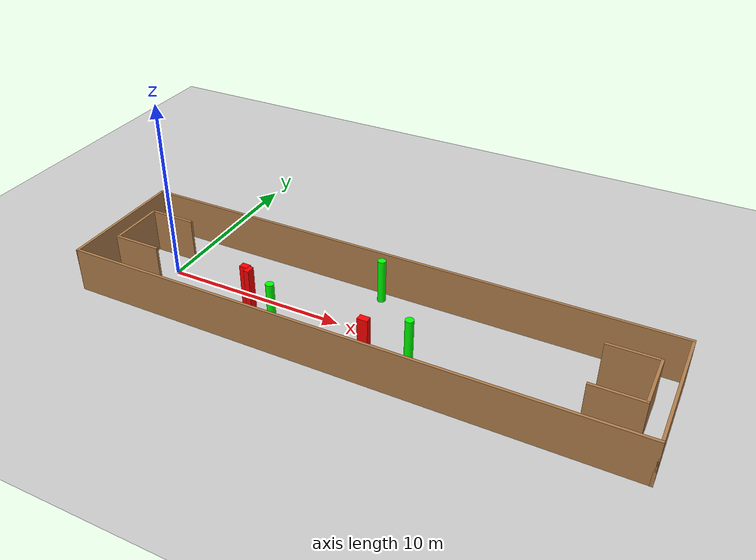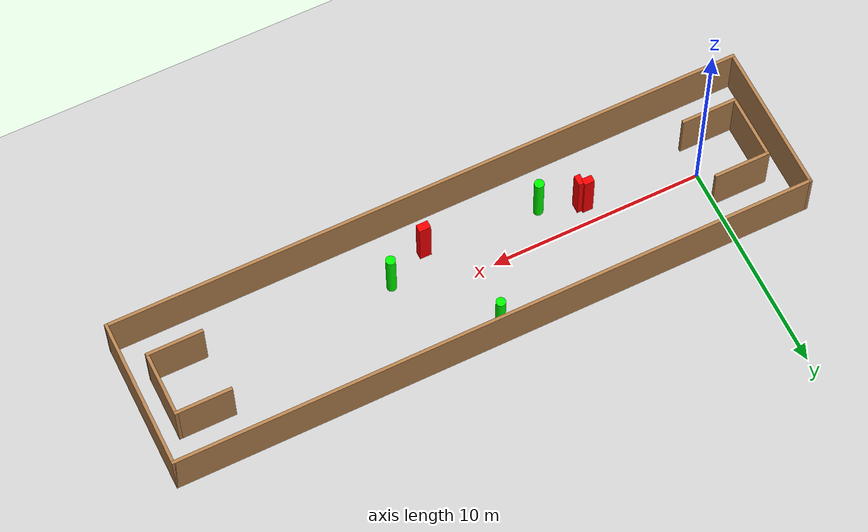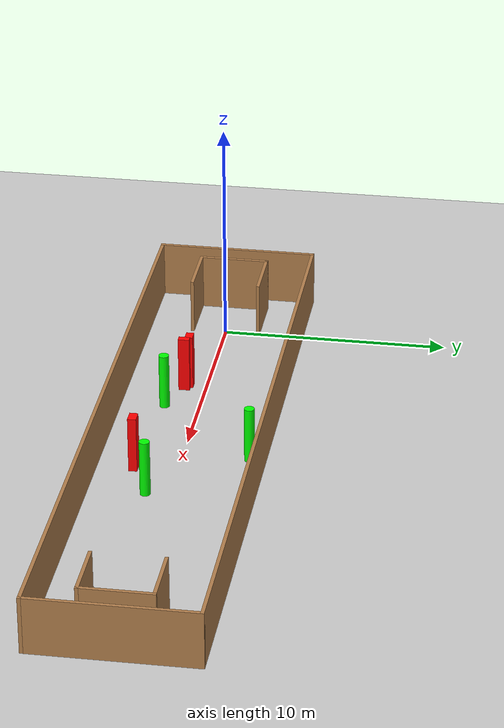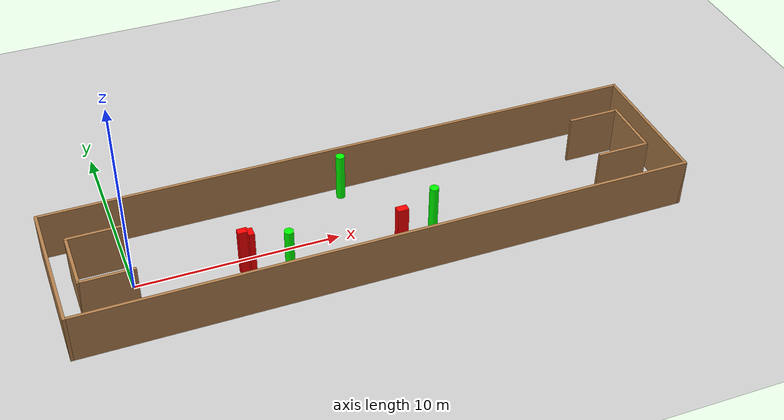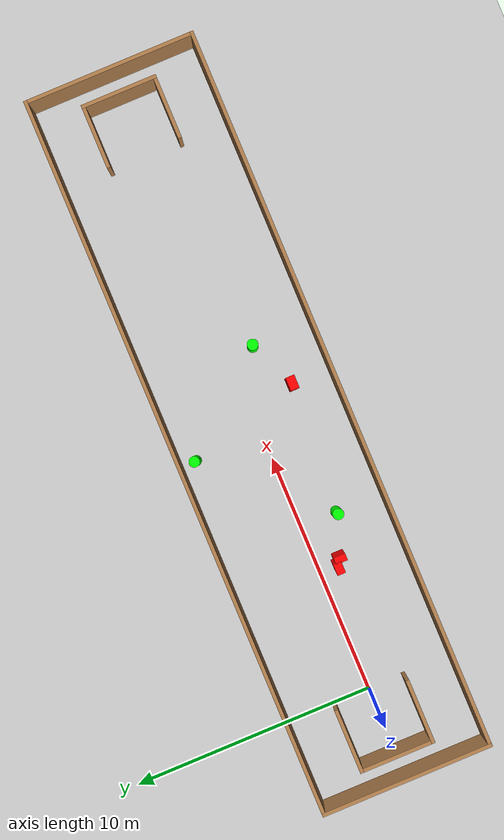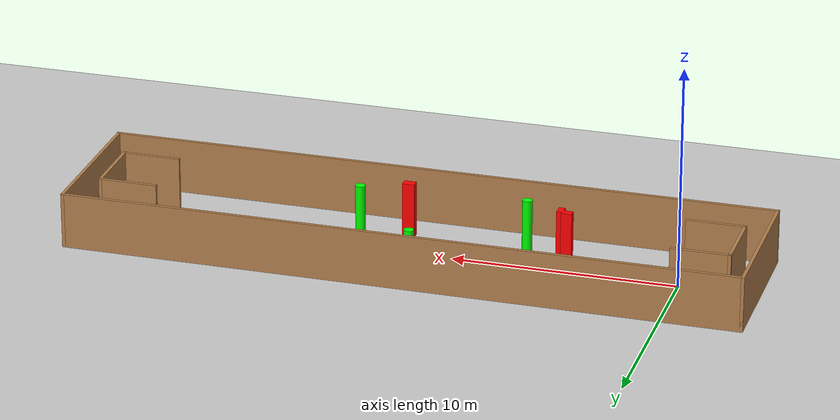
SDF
<sdf version="1.7">
 <world name="default">
  <light name="sun" type="directional">
   <pose>0 0 10 0 -0 0</pose>
   <diffuse>0.8 0.8 0.8 1</diffuse>
   <specular>0.2 0.2 0.2 1</specular>
   <attenuation>
    <range>1000</range>
    <constant>0.9</constant>
    <linear>0.01</linear>
    <quadratic>0.001</quadratic>
   </attenuation>
   <direction>-0.5 0.1 -0.9</direction>
   <spot><inner_angle>0</inner_angle><outer_angle>0</outer_angle><falloff>0</falloff></spot>
  </light>
  <model name="ground_plane">
   <static>1</static>
   <link name="link">
    <collision name="collision">
     <geometry><plane><normal>0 0 1</normal><size>100 100</size></plane></geometry>
     <surface>
      <contact><collide_bitmask>65535</collide_bitmask></contact>
      <friction><ode><mu>100</mu><mu2>50</mu2></ode></friction>
     </surface>
    </collision>
    <visual name="visual">
     <cast_shadows>0</cast_shadows>
     <geometry><plane><normal>0 0 1</normal><size>100 100</size></plane></geometry>
     <material>
      <script><uri>file://media/materials/scripts/gazebo.material</uri><name>Gazebo/Grey</name></script>
     </material>
    </visual>
   </link>
  </model>
  <gravity>0 0 -9.8</gravity>
  <magnetic_field>6e-06 2.3e-05 -4.2e-05</magnetic_field>
  <atmosphere type="adiabatic"/>
  <physics type="ode">
   <max_step_size>0.001</max_step_size>
   <real_time_factor>1</real_time_factor>
   <real_time_update_rate>1000</real_time_update_rate>
  </physics>
  <scene><ambient>0.4 0.4 0.4 1</ambient><background>0.7 0.7 0.7 1</background><shadows>1</shadows></scene>
  <spherical_coordinates>
   <surface_model>EARTH_WGS84</surface_model>
   <latitude_deg>0</latitude_deg>
   <longitude_deg>0</longitude_deg>
   <elevation>0</elevation>
   <heading_deg>0</heading_deg>
  </spherical_coordinates>
  <model name="my_base_walls">
   <link name="Wall_0">
    <collision name="Wall_0_Collision">
     <geometry><box><size>7.15 0.15 2.5</size></box></geometry>
     <pose>0 0 1.25 0 -0 0</pose>
    </collision>
    <visual name="Wall_0_Visual">
     <pose>0 0 1.25 0 -0 0</pose>
     <geometry><box><size>7.15 0.15 2.5</size></box></geometry>
     <material>
      <script><uri>file://media/materials/scripts/gazebo.material</uri><name>Gazebo/Wood</name></script>
      <ambient>1 1 1 1</ambient>
     </material>
     <meta><layer>0</layer></meta>
    </visual>
    <pose>-15 0 0 0 -0 1.5708</pose>
   </link>
   <link name="Wall_10">
    <collision name="Wall_10_Collision">
     <geometry><box><size>2.65 0.15 2.5</size></box></geometry>
     <pose>0 0 1.25 0 -0 0</pose>
    </collision>
    <visual name="Wall_10_Visual">
     <pose>0 0 1.25 0 -0 0</pose>
     <geometry><box><size>2.65 0.15 2.5</size></box></geometry>
     <material>
      <script><uri>file://media/materials/scripts/gazebo.material</uri><name>Gazebo/Wood</name></script>
      <ambient>1 1 1 1</ambient>
     </material>
     <meta><layer>0</layer></meta>
    </visual>
    <pose>-12.75 -1.5 0 0 -0 0</pose>
   </link>
   <link name="Wall_12">
    <collision name="Wall_12_Collision">
     <geometry><box><size>2.65 0.15 2.5</size></box></geometry>
     <pose>0 0 1.25 0 -0 0</pose>
    </collision>
    <visual name="Wall_12_Visual">
     <pose>0 0 1.25 0 -0 0</pose>
     <geometry><box><size>2.65 0.15 2.5</size></box></geometry>
     <material>
      <script><uri>file://media/materials/scripts/gazebo.material</uri><name>Gazebo/Wood</name></script>
      <ambient>1 1 1 1</ambient>
     </material>
     <meta><layer>0</layer></meta>
    </visual>
    <pose>-12.75 1.5 0 0 -0 0</pose>
   </link>
   <link name="Wall_14">
    <collision name="Wall_14_Collision">
     <geometry><box><size>3.15 0.15 2.5</size></box></geometry>
     <pose>0 0 1.25 0 -0 0</pose>
    </collision>
    <visual name="Wall_14_Visual">
     <pose>0 0 1.25 0 -0 0</pose>
     <geometry><box><size>3.15 0.15 2.5</size></box></geometry>
     <material>
      <script><uri>file://media/materials/scripts/gazebo.material</uri><name>Gazebo/Wood</name></script>
      <ambient>1 1 1 1</ambient>
     </material>
     <meta><layer>0</layer></meta>
    </visual>
    <pose>14 0 0 0 -0 -1.5708</pose>
   </link>
   <link name="Wall_15">
    <collision name="Wall_15_Collision">
     <geometry><box><size>2.65 0.15 2.5</size></box></geometry>
     <pose>0 0 1.25 0 -0 0</pose>
    </collision>
    <visual name="Wall_15_Visual">
     <pose>0 0 1.25 0 -0 0</pose>
     <geometry><box><size>2.65 0.15 2.5</size></box></geometry>
     <material>
      <script><uri>file://media/materials/scripts/gazebo.material</uri><name>Gazebo/Wood</name></script>
      <ambient>1 1 1 1</ambient>
     </material>
     <meta><layer>0</layer></meta>
    </visual>
    <pose>12.75 -1.5 0 0 -0 3.14159</pose>
   </link>
   <link name="Wall_17">
    <collision name="Wall_17_Collision">
     <geometry><box><size>2.65 0.15 2.5</size></box></geometry>
     <pose>0 0 1.25 0 -0 0</pose>
    </collision>
    <visual name="Wall_17_Visual">
     <pose>0 0 1.25 0 -0 0</pose>
     <geometry><box><size>2.65 0.15 2.5</size></box></geometry>
     <material>
      <script><uri>file://media/materials/scripts/gazebo.material</uri><name>Gazebo/Wood</name></script>
      <ambient>1 1 1 1</ambient>
     </material>
     <meta><layer>0</layer></meta>
    </visual>
    <pose>12.75 1.5 0 0 -0 3.14159</pose>
   </link>
   <link name="Wall_2">
    <collision name="Wall_2_Collision">
     <geometry><box><size>30.15 0.15 2.5</size></box></geometry>
     <pose>0 0 1.25 0 -0 0</pose>
    </collision>
    <visual name="Wall_2_Visual">
     <pose>0 0 1.25 0 -0 0</pose>
     <geometry><box><size>30.15 0.15 2.5</size></box></geometry>
     <material>
      <script><uri>file://media/materials/scripts/gazebo.material</uri><name>Gazebo/Wood</name></script>
      <ambient>1 1 1 1</ambient>
     </material>
     <meta><layer>0</layer></meta>
    </visual>
    <pose>-0 -3.5 0 0 -0 0</pose>
   </link>
   <link name="Wall_4">
    <collision name="Wall_4_Collision">
     <geometry><box><size>30.15 0.15 2.5</size></box></geometry>
     <pose>0 0 1.25 0 -0 0</pose>
    </collision>
    <visual name="Wall_4_Visual">
     <pose>0 0 1.25 0 -0 0</pose>
     <geometry><box><size>30.15 0.15 2.5</size></box></geometry>
     <material>
      <script><uri>file://media/materials/scripts/gazebo.material</uri><name>Gazebo/Wood</name></script>
      <ambient>1 1 1 1</ambient>
     </material>
     <meta><layer>0</layer></meta>
    </visual>
    <pose>-0 3.5 0 0 -0 0</pose>
   </link>
   <link name="Wall_6">
    <collision name="Wall_6_Collision">
     <geometry><box><size>7.15 0.15 2.5</size></box></geometry>
     <pose>0 0 1.25 0 -0 0</pose>
    </collision>
    <visual name="Wall_6_Visual">
     <pose>0 0 1.25 0 -0 0</pose>
     <geometry><box><size>7.15 0.15 2.5</size></box></geometry>
     <material>
      <script><uri>file://media/materials/scripts/gazebo.material</uri><name>Gazebo/Wood</name></script>
      <ambient>1 1 1 1</ambient>
     </material>
     <meta><layer>0</layer></meta>
    </visual>
    <pose>15 0 0 0 -0 -1.5708</pose>
   </link>
   <link name="Wall_9">
    <collision name="Wall_9_Collision">
     <geometry><box><size>3.15 0.15 2.5</size></box></geometry>
     <pose>0 0 1.25 0 -0 0</pose>
    </collision>
    <visual name="Wall_9_Visual">
     <pose>0 0 1.25 0 -0 0</pose>
     <geometry><box><size>3.15 0.15 2.5</size></box></geometry>
     <material>
      <script><uri>file://media/materials/scripts/gazebo.material</uri><name>Gazebo/Wood</name></script>
      <ambient>1 1 1 1</ambient>
     </material>
     <meta><layer>0</layer></meta>
    </visual>
    <pose>-14 0 0 0 -0 -1.5708</pose>
   </link>
   <static>1</static>
   <pose>11.5 0 0 0 -0 0</pose>
  </model>
  <model name="cylinder1">
   <static>1</static>
   <link name="link">
    <inertial>
     <mass>1</mass>
     <inertia><ixx>0.5</ixx><ixy>0</ixy><ixz>0</ixz><iyy>0.5</iyy><iyz>0</iyz><izz>1</izz></inertia>
    </inertial>
    <collision name="collision">
     <geometry><cylinder><radius>0.2232145562560712</radius><length>2.5</length></cylinder></geometry>
    </collision>
    <visual name="visual">
     <geometry><cylinder><radius>0.2232145562560712</radius><length>2.5</length></cylinder></geometry>
     <material>
      <ambient>0 1 0 1</ambient>
      <diffuse>0 1 0 1</diffuse>
      <specular>0.1 0.1 0.1 1</specular>
      <emissive>0 0 0 0</emissive>
     </material>
    </visual>
   </link>
   <pose>7.063353197794298 -1.5265627650817621 1.25 0 0 0</pose>
  </model>
  <model name="cylinder2">
   <static>1</static>
   <link name="link">
    <inertial>
     <mass>1</mass>
     <inertia><ixx>0.5</ixx><ixy>0</ixy><ixz>0</ixz><iyy>0.5</iyy><iyz>0</iyz><izz>1</izz></inertia>
    </inertial>
    <collision name="collision">
     <geometry><cylinder><radius>0.21995511917732033</radius><length>2.5</length></cylinder></geometry>
    </collision>
    <visual name="visual">
     <geometry><cylinder><radius>0.21995511917732033</radius><length>2.5</length></cylinder></geometry>
     <material>
      <ambient>0 1 0 1</ambient>
      <diffuse>0 1 0 1</diffuse>
      <specular>0.1 0.1 0.1 1</specular>
      <emissive>0 0 0 0</emissive>
     </material>
    </visual>
   </link>
   <pose>11.096545578488024 2.848649746657392 1.25 0 0 0</pose>
  </model>
  <model name="cylinder3">
   <static>1</static>
   <link name="link">
    <inertial>
     <mass>1</mass>
     <inertia><ixx>0.5</ixx><ixy>0</ixy><ixz>0</ixz><iyy>0.5</iyy><iyz>0</iyz><izz>1</izz></inertia>
    </inertial>
    <collision name="collision">
     <geometry><cylinder><radius>0.2245923423191935</radius><length>2.5</length></cylinder></geometry>
    </collision>
    <visual name="visual">
     <geometry><cylinder><radius>0.2245923423191935</radius><length>2.5</length></cylinder></geometry>
     <material>
      <ambient>0 1 0 1</ambient>
      <diffuse>0 1 0 1</diffuse>
      <specular>0.1 0.1 0.1 1</specular>
      <emissive>0 0 0 0</emissive>
     </material>
    </visual>
   </link>
   <pose>14.428304843763808 -0.9973285326815127 1.25 0 0 0</pose>
  </model>
  <model name="box1">
   <static>1</static>
   <link name="link">
    <inertial>
     <mass>1</mass>
     <inertia><ixx>0.083</ixx><ixy>0</ixy><ixz>0</ixz><iyy>0.083</iyy><iyz>0</iyz><izz>0.083</izz></inertia>
    </inertial>
    <collision name="collision">
     <geometry><box><size>0.547517306438246 0.36438358464073517 2.5</size></box></geometry>
    </collision>
    <visual name="visual">
     <geometry><box><size>0.547517306438246 0.36438358464073517 2.5</size></box></geometry>
     <material>
      <ambient>1 0 0 1</ambient>
      <diffuse>1 0 0 1</diffuse>
      <specular>0.1 0.1 0.1 1</specular>
      <emissive>0 0 0 0</emissive>
     </material>
    </visual>
    <sensor name="my_contact" type="contact">
     <contact><collision>box_collision</collision><topic>__default_topic__</topic></contact>
    </sensor>
   </link>
   <pose>12.459247048412479 -1.8514104110237966 1.25 0 0 0</pose>
  </model>
  <model name="box2">
   <static>1</static>
   <link name="link">
    <inertial>
     <mass>1</mass>
     <inertia><ixx>0.083</ixx><ixy>0</ixy><ixz>0</ixz><iyy>0.083</iyy><iyz>0</iyz><izz>0.083</izz></inertia>
    </inertial>
    <collision name="collision">
     <geometry><box><size>0.4813871268928787 0.3392403027748513 2.5</size></box></geometry>
    </collision>
    <visual name="visual">
     <geometry><box><size>0.4813871268928787 0.3392403027748513 2.5</size></box></geometry>
     <material>
      <ambient>1 0 0 1</ambient>
      <diffuse>1 0 0 1</diffuse>
      <specular>0.1 0.1 0.1 1</specular>
      <emissive>0 0 0 0</emissive>
     </material>
    </visual>
    <sensor name="my_contact" type="contact">
     <contact><collision>box_collision</collision><topic>__default_topic__</topic></contact>
    </sensor>
   </link>
   <pose>5.100994941330027 -0.7476264807534032 1.25 0 0 0</pose>
  </model>
  <model name="box3">
   <static>1</static>
   <link name="link">
    <inertial>
     <mass>1</mass>
     <inertia><ixx>0.083</ixx><ixy>0</ixy><ixz>0</ixz><iyy>0.083</iyy><iyz>0</iyz><izz>0.083</izz></inertia>
    </inertial>
    <collision name="collision">
     <geometry><box><size>0.286412017683845 0.4910210451747701 2.5</size></box></geometry>
    </collision>
    <visual name="visual">
     <geometry><box><size>0.286412017683845 0.4910210451747701 2.5</size></box></geometry>
     <material>
      <ambient>1 0 0 1</ambient>
      <diffuse>1 0 0 1</diffuse>
      <specular>0.1 0.1 0.1 1</specular>
      <emissive>0 0 0 0</emissive>
     </material>
    </visual>
    <sensor name="my_contact" type="contact">
     <contact><collision>box_collision</collision><topic>__default_topic__</topic></contact>
    </sensor>
   </link>
   <pose>5.423167643894267 -0.9297042891784164 1.25 0 0 0</pose>
  </model>
 </world>
</sdf>
